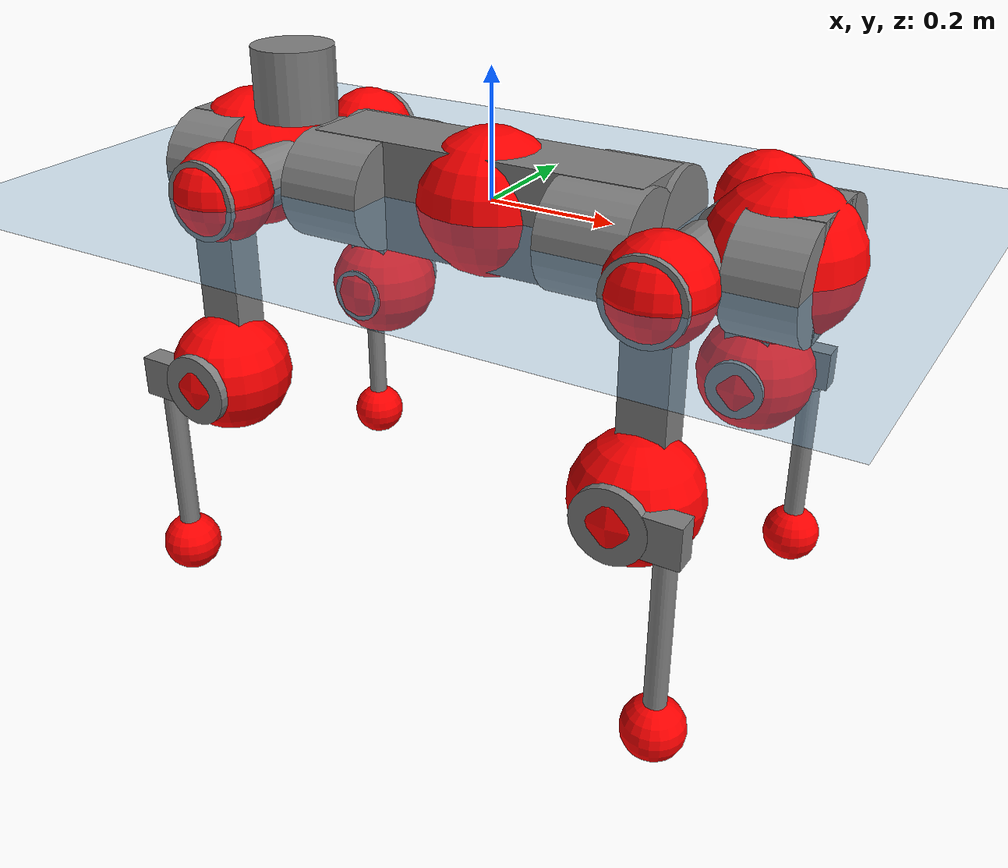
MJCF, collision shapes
<mujoco model="anymal_c">
  <compiler angle="radian" assetdir="assets" balanceinertia="true" inertiafromgeom="false"/>

  <option timestep="0.005" density="1.2" viscosity="2e-05"/>

  <size nkey="1"/>

  <visual>
    <quality shadowsize="8192"/>
    <map shadowclip="0.5"/>
  </visual>

  <default>
    <default class="/">
      <material specular="0" shininess="0.25"/>
      <geom contype="0" conaffinity="0" group="1" solref="-1000 -80"/>
      <site size="0.01 0.005 0.005" group="5"/>
      <general forcelimited="true" forcerange="-80 80" biastype="affine" gainprm="80" biasprm="0 -80 -2"/>
      <default class="anymal_c">
        <joint armature="0.01" damping="0.01" frictionloss="0.1"/>
        <default class="visual">
          <geom type="mesh" group="2"/>
          <default class="visual_zflip"/>
        </default>
        <default class="collision">
          <geom type="cylinder" group="3"/>
          <default class="foot">
            <geom size="0.03 0 0" type="sphere" condim="6" priority="1" friction="0.8 0.02 0.01" solimp="0.015 1 0.03"/>
          </default>
        </default>
      </default>
      <default class="reward_collision_sphere">
        <geom group="5" rgba="1 0 0 1"/>
      </default>
    </default>
  </default>

  <asset>
    <texture type="skybox" colorspace="auto" name="//unnamed_texture_0" builtin="gradient" rgb1="0.95 0.95 0.95" rgb2="0.95 0.95 0.95" width="100" height="600"/>
    <texture type="2d" colorspace="auto" name="texplane" builtin="checker" rgb1="0.345 0.575 0.748" rgb2="0.345 0.575 0.748" markrgb="1 1 1" width="512" height="512"/>
    <texture type="2d" colorspace="linear" name="base" file="base.png"/>
    <texture type="2d" colorspace="linear" name="top_shell" file="top_shell.png"/>
    <texture type="2d" colorspace="linear" name="bottom_shell" file="bottom_shell.png"/>
    <texture type="2d" colorspace="linear" name="remote" file="remote.png"/>
    <texture type="2d" colorspace="linear" name="hatch" file="hatch.png"/>
    <texture type="2d" colorspace="linear" name="handle" file="handle.png"/>
    <texture type="2d" colorspace="linear" name="face" file="face.png"/>
    <texture type="2d" colorspace="linear" name="battery" file="battery.png"/>
    <texture type="2d" colorspace="linear" name="lidar_cage" file="lidar_cage.png"/>
    <texture type="2d" colorspace="linear" name="depth_camera" file="depth_camera.png"/>
    <texture type="2d" colorspace="linear" name="wide_angle_camera" file="wide_angle_camera.png"/>
    <texture type="2d" colorspace="linear" name="lidar" file="lidar.png"/>
    <texture type="2d" colorspace="linear" name="drive" file="drive.png"/>
    <texture type="2d" colorspace="linear" name="hip_l" file="hip_l.png"/>
    <texture type="2d" colorspace="linear" name="shank_l" file="shank_l.png"/>
    <texture type="2d" colorspace="linear" name="foot" file="foot.png"/>
    <texture type="2d" colorspace="linear" name="thigh" file="thigh.png"/>
    <texture type="2d" colorspace="linear" name="shank_r" file="shank_r.png"/>
    <texture type="2d" colorspace="linear" name="hip_r" file="hip_r.png"/>
    <material name="MatPlane" class="/" texture="texplane" texuniform="true" texrepeat="2 2" specular="0.9" shininess="0.5"/>
    <material name="black_plastic" class="/" rgba="0.007 0.007 0.007 1"/>
    <material name="green" class="/" rgba="0.052 0.178 0.033 1"/>
    <material name="red" class="/" rgba="0.178 0.006 0.005 1"/>
    <material name="yellow" class="/" rgba="0.178 0.119 0.006 1"/>
    <material name="lwl" class="/" rgba="0.8 0.8 0.8 1"/>
    <material name="base" class="/" texture="base"/>
    <material name="top_shell" class="/" texture="top_shell"/>
    <material name="bottom_shell" class="/" texture="bottom_shell"/>
    <material name="hip_l" class="/" texture="hip_l"/>
    <material name="thigh" class="/" texture="thigh"/>
    <material name="shank_l" class="/" texture="shank_l"/>
    <material name="foot" class="/" texture="foot"/>
    <material name="hip_r" class="/" texture="hip_r"/>
    <material name="shank" class="/" texture="shank_r"/>
    <material name="hatch" class="/" texture="hatch"/>
    <material name="remote" class="/" texture="remote"/>
    <material name="handle" class="/" texture="handle"/>
    <material name="face" class="/" texture="face"/>
    <material name="depth_camera" class="/" texture="depth_camera"/>
    <material name="wide_angle_camera" class="/" texture="wide_angle_camera"/>
    <material name="battery" class="/" texture="battery"/>
    <material name="lidar_cage" class="/" texture="lidar_cage"/>
    <material name="lidar" class="/" texture="lidar"/>
    <material name="drive" class="/" texture="drive"/>
    <mesh name="base_0" class="/" file="base_0.obj"/>
    <mesh name="base_1" class="/" file="base_1.obj"/>
    <mesh name="base_2" class="/" file="base_2.obj"/>
    <mesh name="base_3" class="/" file="base_3.obj"/>
    <mesh name="base_4" class="/" file="base_4.obj"/>
    <mesh name="base_5" class="/" file="base_5.obj"/>
    <mesh name="top_shell" class="/" file="top_shell.obj"/>
    <mesh name="bottom_shell" class="/" file="bottom_shell.obj"/>
    <mesh name="remote" class="/" file="remote.obj"/>
    <mesh name="handle" class="/" file="handle.obj"/>
    <mesh name="face" class="/" file="face.obj"/>
    <mesh name="wide_angle_camera" class="/" file="wide_angle_camera.obj"/>
    <mesh name="depth_camera" class="/" file="depth_camera.obj"/>
    <mesh name="battery" class="/" file="battery.obj"/>
    <mesh name="lidar_cage" class="/" file="lidar_cage.obj"/>
    <mesh name="lidar" class="/" file="lidar.obj"/>
    <mesh name="drive" class="/" file="drive.obj"/>
    <mesh name="hip_l" class="/" file="hip_l.obj"/>
    <mesh name="thigh" class="/" file="thigh.obj"/>
    <mesh name="shank_l" class="/" file="shank_l.obj"/>
    <mesh name="foot" class="/" file="foot.obj"/>
    <mesh name="hip_r" class="/" file="hip_r.obj"/>
    <mesh name="hatch" class="/" file="hatch.obj"/>
    <mesh name="shank_r" class="/" file="shank_r.obj"/>
  </asset>

  <worldbody>
    <geom name="floor" class="/" size="100 100 0.125" type="plane" group="0" material="MatPlane"/>
    <light name="toplight_shadow" class="/" pos="0 0 5" dir="0.0990148 0.0990148 -0.990148" type="directional" ambient="0.04 0.04 0.04" diffuse="0.55 0.55 0.55" specular="0.12 0.12 0.12"/>
    <light name="toplight_fill" class="/" pos="0 0 5" dir="0.0990148 0.0990148 -0.990148" type="directional" castshadow="false" ambient="0.04 0.04 0.04" diffuse="0.3 0.3 0.3" specular="0.08 0.08 0.08"/>
    <body name="trunk" childclass="anymal_c" pos="1.49723e-05 -2.13646e-05 -0.00181529" quat="1 9.28836e-05 2.85118e-05 0.000109816">
      <inertial pos="-3.62487e-07 -0.00280296 0.0490641" quat="0.496848 0.500668 0.502612 0.499854" mass="16.1949" diaginertia="0.64171 0.258745 0.23791"/>
      <joint name="//unnamed_joint_0" type="free" armature="0" damping="0" frictionloss="0"/>
      <geom name="//unnamed_geom_1" class="visual" material="green" mesh="base_0"/>
      <geom name="//unnamed_geom_2" class="visual" material="yellow" mesh="base_1"/>
      <geom name="//unnamed_geom_3" class="visual" material="red" mesh="base_2"/>
      <geom name="//unnamed_geom_4" class="visual" material="black_plastic" mesh="base_3"/>
      <geom name="//unnamed_geom_5" class="visual" material="lwl" mesh="base_4"/>
      <geom name="//unnamed_geom_6" class="visual" material="base" mesh="base_5"/>
      <geom name="trunk_1" class="collision" size="0.274717 0.066311 0.085257" type="box"/>
      <geom name="trunk_2" class="collision" size="0.085257 0.0686793" pos="0.216907 0.0583903 0" quat="0.707107 0 0.707107 0"/>
      <geom name="trunk_3" class="collision" size="0.085257 0.0686793" pos="-0.216907 0.0583903 0" quat="0.707107 0 0.707107 0"/>
      <geom name="trunk_4" class="collision" size="0.085257 0.0686793" pos="0.216907 -0.0583903 0" quat="0.707107 0 0.707107 0"/>
      <geom name="trunk_5" class="collision" size="0.085257 0.0686793" pos="-0.216907 -0.0583903 0" quat="0.707107 0 0.707107 0"/>
      <geom name="//unnamed_geom_12" class="visual" material="top_shell" mesh="top_shell"/>
      <geom name="//unnamed_geom_13" class="visual" material="bottom_shell" mesh="bottom_shell"/>
      <geom name="//unnamed_geom_14" class="visual" material="remote" mesh="remote"/>
      <geom name="//unnamed_geom_15" class="visual" material="handle" mesh="handle"/>
      <geom name="//unnamed_geom_16" class="visual" pos="0.41337 0 0" quat="1 0 0 0" material="face" mesh="face"/>
      <geom name="trunk_6" class="collision" size="0.0521015 0.066311 0.085257" pos="0.46822 0 0" type="box"/>
      <geom name="//unnamed_geom_18" class="collision" size="0.085257 0.0521015" pos="0.46822 0.0583903 0" quat="0.707107 0 0.707107 0"/>
      <geom name="//unnamed_geom_19" class="collision" size="0.085257 0.0521015" pos="0.46822 -0.0583903 0" quat="0.707107 0 0.707107 0"/>
      <geom name="//unnamed_geom_20" class="visual" pos="0.460392 0 -0.0296064" quat="0.965926 0 0.258819 0" material="depth_camera" mesh="depth_camera"/>
      <geom name="//unnamed_geom_21" class="visual" pos="0.511601 0 0.0151269" material="wide_angle_camera" mesh="wide_angle_camera"/>
      <geom name="//unnamed_geom_22" class="visual_zflip" pos="-0.41337 0 0" quat="0 0 0 1" material="face" mesh="face"/>
      <geom name="trunk_7" class="collision" size="0.0521015 0.066311 0.085257" pos="-0.46822 0 0" quat="0 0 0 1" type="box"/>
      <geom name="//unnamed_geom_24" class="collision" size="0.085257 0.0521015" pos="-0.46822 -0.0583903 0" quat="0 -0.707107 0 0.707107"/>
      <geom name="//unnamed_geom_25" class="collision" size="0.085257 0.0521015" pos="-0.46822 0.0583903 0" quat="0 -0.707107 0 0.707107"/>
      <geom name="//unnamed_geom_26" class="visual" pos="-0.460392 0 -0.0296064" quat="0 -0.258819 0 0.965926" material="depth_camera" mesh="depth_camera"/>
      <geom name="//unnamed_geom_27" class="visual_zflip" pos="-0.511601 0 0.0151269" quat="0 0 0 1" material="wide_angle_camera" mesh="wide_angle_camera"/>
      <geom name="//unnamed_geom_28" class="visual" material="battery" mesh="battery"/>
      <geom name="//unnamed_geom_29" class="visual" pos="0 0.0616388 0.0292541" quat="0.683013 -0.183013 0.183013 0.683013" material="depth_camera" mesh="depth_camera"/>
      <geom name="//unnamed_geom_30" class="visual" pos="0 -0.0616388 0.0292541" quat="0.683013 0.183013 0.183013 -0.683013" material="depth_camera" mesh="depth_camera"/>
      <geom name="//unnamed_geom_31" class="visual" pos="-0.363007 0 0.0742704" quat="1 0 0 0" material="lidar_cage" mesh="lidar_cage"/>
      <geom name="trunk_8" class="collision" size="0.066311 0.056838" pos="-0.363007 0 0.134899"/>
      <geom name="//unnamed_geom_33" class="visual" pos="-0.363007 -6.40879e-05 0.14369" quat="0.707107 0 0 -0.707107" material="lidar" mesh="lidar"/>
      <geom name="//unnamed_geom_34" class="visual" pos="0.299082 0.0868139 -3.04179e-09" quat="0.258819 0.965926 0 0" material="drive" mesh="drive"/>
      <geom name="//unnamed_geom_35" class="visual" pos="0.299082 -0.0868139 3.04179e-09" quat="0.258819 -0.965926 0 0" material="drive" mesh="drive"/>
      <geom name="//unnamed_geom_36" class="visual" pos="-0.299082 0.0868139 3.04179e-09" quat="0 0 0.965926 -0.258819" material="drive" mesh="drive"/>
      <geom name="//unnamed_geom_37" class="visual" pos="-0.299082 -0.0868139 -3.04179e-09" quat="0 0 -0.965926 -0.258819" material="drive" mesh="drive"/>
      <geom name="//unnamed_geom_38" class="visual" pos="0.115684 0 0.0737651" quat="1 0 0 0" material="hatch" mesh="hatch"/>
      <geom name="//unnamed_geom_39" class="reward_collision_sphere" size="0.113676"/>
      <geom name="//unnamed_geom_40" class="reward_collision_sphere" size="0.113676" pos="0.448773 0 0"/>
      <geom name="//unnamed_geom_41" class="reward_collision_sphere" size="0.113676" pos="-0.448773 0 0"/>
      <site name="imu" pos="0.23478 0.0100944 0.0598336" size="0.009473"/>
      <camera name="track" pos="0 -1.66829 0" quat="0.707107 0.707107 0 0" mode="trackcom"/>
      <camera name="ego_camera" pos="0.448773 0 -0.0404192" quat="-0.5 -0.5 0.5 0.5"/>
      <body name="LF_HIP" pos="0.29879 0.0879994 0.00120788" quat="0.258713 0.965954 -0.000176378 0.000175046">
        <inertial pos="0.0591923 -0.0129344 -0.00849549" quat="-0.132476 0.708793 -0.131713 0.68023" mass="2.26863" diaginertia="0.00554314 0.00197067 0.0034102"/>
        <joint name="LF_HAA" pos="0 0 0" axis="0.999906 0.013538 -0.00237308" range="-0.725074 0.503806" armature="0.0107533" damping="0" frictionloss="0.0993275"/>
        <geom name="//unnamed_geom_42" class="visual" pos="0 -0.000178935 2.93899e-05" quat="0.258819 -0.965926 0 0" material="hip_l" mesh="hip_l"/>
        <geom name="//unnamed_geom_43" class="visual" pos="0.0597366 -0.0702985 -0.0418911" quat="0.183013 -0.683013 0.683013 0.183013" material="drive" mesh="drive"/>
        <geom name="//unnamed_geom_44" class="collision" size="0.047365 0.066311" pos="0.0597366 -0.00997623 -0.00697737" quat="-0.353553 -0.612372 0.612372 -0.353553"/>
        <body name="LF_THIGH" pos="0.0600126 -0.059467 -0.0433062" quat="0.182991 -0.682995 0.68305 0.182963">
          <inertial pos="0.0311391 -0.000183928 -0.245567" quat="0.993392 -0.00853509 -0.0771443 0.0845501" mass="2.66465" diaginertia="0.0289805 0.0121198 0.0044814"/>
          <joint name="LF_HFE" pos="0 0 0" axis="0.999879 -0.015212 0.00315008" range="-3.12398 3.11761" armature="0.00910256" damping="0.0136281" frictionloss="0.0824104"/>
          <geom name="//unnamed_geom_45" class="visual" pos="0.00324557 5.11426e-06 0" quat="0.707107 0 0 -0.707107" material="thigh" mesh="thigh"/>
          <geom name="//unnamed_geom_46" class="collision" size="0.0615745 0.037892" pos="0.0398909 0 0" quat="0.5 0.5 -0.5 -0.5"/>
          <geom name="//unnamed_geom_47" class="collision" size="0.0355238 0.028419 0.133867" pos="0.0299182 0 -0.142795" quat="0.707107 0 0 -0.707107" type="box"/>
          <geom name="//unnamed_geom_48" class="visual" pos="0.100026 0 -0.287987" quat="1 0 0 0" material="drive" mesh="drive"/>
          <geom name="//unnamed_geom_49" class="collision" size="0.047365 0.066311" pos="0.0302174 0 -0.287987" quat="0.707107 0 0.707107 0"/>
          <geom name="//unnamed_geom_50" class="reward_collision_sphere" size="0.075784" pos="0.0249318 0 0"/>
          <body name="LF_SHANK" pos="0.102839 -0.00298375 -0.290873" quat="0.999999 0.000581611 0.000892012 0.000648324">
            <inertial pos="0.00646387 -0.0510662 -0.0805339" quat="0.992917 -0.115146 -0.0048715 -0.0288613" mass="0.491557" diaginertia="0.00992101 0.003709 0.00118238"/>
            <joint name="LF_KFE" pos="0 0 0" axis="0.999999 -0.000728024 0.00113016" range="-3.17405 3.13105" armature="0.00977404" damping="0" frictionloss="0.101465"/>
            <geom name="//unnamed_geom_51" class="visual" pos="0.00105831 0.00564296 0" quat="0.707107 0 0 -0.707107" material="shank_l" mesh="shank_l"/>
            <geom name="LF_kfe_act" class="collision" size="0.056838 0.018946" pos="0.0199455 0 0" quat="0.5 0.5 -0.5 -0.5"/>
            <geom name="//unnamed_geom_53" class="collision" size="0.0544688 0.0319714 0.0179987" pos="0.0199455 -0.0479626 0" quat="0.5 0.5 -0.5 -0.5" type="box"/>
            <geom name="//unnamed_geom_54" class="visual" pos="0.0130142 -0.0715447 -0.341512" quat="0.382683 0 0 -0.92388" material="foot" mesh="foot"/>
            <geom name="LF_calf" class="collision" size="0.0165778 0.133808" pos="0.0130144 -0.0733632 -0.170756" quat="0.707107 0 0 -0.707107"/>
            <geom name="LF_foot" class="foot" size="0.030709" pos="0.0130144 -0.0733632 -0.318776" quat="0.707107 0 0 -0.707107"/>
            <geom name="//unnamed_geom_57" class="reward_collision_sphere" size="0.09473" pos="-0.0498636 0 0"/>
            <geom name="//unnamed_geom_58" class="reward_collision_sphere" size="0.047365" pos="0.0130144 -0.0733632 -0.318776"/>
            <site name="LF_foot" class="foot" pos="0.0130144 -0.0733632 -0.318776" quat="0.707107 0 0 -0.707107" size="0.009473"/>
          </body>
        </body>
      </body>
      <body name="RF_HIP" pos="0.298405 -0.0877464 0.000201337" quat="0.258709 -0.965955 0.000131169 -5.69864e-06">
        <inertial pos="0.0592126 0.0133334 -0.00837735" quat="0.134884 0.678633 0.128106 0.71053" mass="2.43506" diaginertia="0.00587153 0.00204557 0.00353398"/>
        <joint name="RF_HAA" pos="0 0 0" axis="1 -0.000398799 0.000177317" range="-0.546078 0.707022" armature="0.00827062" damping="0.00954512" frictionloss="0.0822509"/>
        <geom name="//unnamed_geom_59" class="visual" pos="0 0.000178933 2.93898e-05" quat="0.258819 0.965926 0 0" material="hip_r" mesh="hip_r"/>
        <geom name="//unnamed_geom_60" class="visual" pos="0.0597366 0.0702985 -0.0418911" quat="0.183013 0.683013 0.683013 -0.183013" material="drive" mesh="drive"/>
        <geom name="//unnamed_geom_61" class="collision" size="0.047365 0.066311" pos="0.0597366 0.00997623 -0.00697737" quat="-0.353553 0.612372 0.612372 0.353553"/>
        <body name="RF_THIGH" pos="0.0601766 0.0633957 -0.0433394" quat="0.183 0.683242 0.682817 -0.182899">
          <inertial pos="0.030576 -0.000883493 -0.247833" quat="0.992756 0.00467871 -0.0745205 0.0941322" mass="2.45296" diaginertia="0.0290013 0.0119517 0.00430125"/>
          <joint name="RF_HFE" pos="0 0 0" axis="0.999968 -0.00302451 -0.00747297" stiffness="0.00641339" range="-3.0891 3.17359" armature="0.00960904" damping="0" frictionloss="0.106715"/>
          <geom name="//unnamed_geom_62" class="visual" pos="0.00324557 5.11426e-06 0" quat="0.707107 0 0 -0.707107" material="thigh" mesh="thigh"/>
          <geom name="//unnamed_geom_63" class="collision" size="0.0615745 0.037892" pos="0.0398909 0 0" quat="0.5 0.5 0.5 0.5"/>
          <geom name="//unnamed_geom_64" class="collision" size="0.0355238 0.028419 0.133867" pos="0.0299182 0 -0.142795" quat="0.707107 0 0 0.707107" type="box"/>
          <geom name="//unnamed_geom_65" class="visual" pos="0.100026 0 -0.287987" quat="1 0 0 0" material="drive" mesh="drive"/>
          <geom name="//unnamed_geom_66" class="collision" size="0.047365 0.066311" pos="0.0302174 0 -0.287987" quat="0.707107 0 0.707107 0"/>
          <geom name="//unnamed_geom_67" class="reward_collision_sphere" size="0.075784" pos="0.0249318 0 0"/>
          <body name="RF_SHANK" pos="0.102031 -0.00225541 -0.288159" quat="1 -8.29297e-05 4.5204e-05 7.1369e-05">
            <inertial pos="0.00587477 0.0506705 -0.078559" quat="0.993181 0.112981 -0.0044265 0.0284257" mass="0.503612" diaginertia="0.00966241 0.00361178 0.00118275"/>
            <joint name="RF_KFE" pos="0 0 0" axis="1 -0.00059636 0.0003984" stiffness="0.000607252" range="-3.15153 3.1633" armature="0.00986158" damping="0.00596434" frictionloss="0.0819315"/>
            <geom name="//unnamed_geom_68" class="visual" pos="0.0010583 -0.00564295 0" quat="0.707107 0 0 0.707107" material="shank" mesh="shank_r"/>
            <geom name="RF_kfe_act" class="collision" size="0.056838 0.018946" pos="0.0199455 0 0" quat="0.5 0.5 0.5 0.5"/>
            <geom name="//unnamed_geom_70" class="collision" size="0.0544688 0.0319714 0.0179987" pos="0.0199455 0.0479626 0" quat="0.5 0.5 0.5 0.5" type="box"/>
            <geom name="//unnamed_geom_71" class="visual" pos="0.0130147 0.0715447 -0.341512" quat="0.382683 0 0 0.92388" material="foot" mesh="foot"/>
            <geom name="RF_calf" class="collision" size="0.0165778 0.133808" pos="0.0130144 0.0733632 -0.170756" quat="0.707107 0 0 0.707107"/>
            <geom name="RF_foot" class="foot" size="0.0266481" pos="0.0130144 0.0733632 -0.318776" quat="0.707107 0 0 0.707107"/>
            <geom name="//unnamed_geom_74" class="reward_collision_sphere" size="0.09473" pos="-0.0498636 0 0"/>
            <geom name="//unnamed_geom_75" class="reward_collision_sphere" size="0.047365" pos="0.0130144 0.0733632 -0.318776"/>
            <site name="RF_foot" class="foot" pos="0.0130144 0.0733632 -0.318776" quat="0.707107 0 0 0.707107" size="0.009473"/>
          </body>
        </body>
      </body>
      <body name="LH_HIP" pos="-0.301274 0.08732 0.000805356" quat="-4.33381e-05 0.000376497 0.965902 -0.258906">
        <inertial pos="0.0568115 0.0151584 -0.00794948" quat="0.134894 0.676337 0.133515 0.71172" mass="2.34912" diaginertia="0.00564004 0.00198912 0.00324735"/>
        <joint name="LH_HAA" pos="0 0 0" axis="0.999999 -8.25217e-05 -0.00130881" range="-0.503992 0.672626" armature="0.00808006" damping="0.00737607" frictionloss="0.0921761"/>
        <geom name="//unnamed_geom_76" class="visual" pos="0 0.000178933 2.93898e-05" quat="-0.258819 -0.965926 0 0" material="hip_r" mesh="hip_r"/>
        <geom name="//unnamed_geom_77" class="visual" pos="0.0597366 0.0702985 -0.0418911" quat="0.183013 0.683013 0.683013 -0.183013" material="drive" mesh="drive"/>
        <geom name="//unnamed_geom_78" class="collision" size="0.047365 0.066311" pos="0.0597366 0.00997623 -0.00697737" quat="-0.353553 0.612372 0.612372 0.353553"/>
        <body name="LH_THIGH" pos="0.0572955 0.0579334 -0.0418884" quat="0.182872 0.683087 0.682956 -0.183087">
          <inertial pos="0.0307906 0.00223329 -0.247259" quat="0.99275 -0.00541511 -0.0812476 0.0884126" mass="2.61716" diaginertia="0.0297952 0.0118909 0.00436279"/>
          <joint name="LH_HFE" pos="0 0 0" axis="0.999933 0.0115539 -0.000905136" stiffness="0.000657709" range="-3.14638 3.14456" armature="0.00919641" damping="0.00772558" frictionloss="0.0920471"/>
          <geom name="//unnamed_geom_79" class="visual" pos="0.00324557 5.11426e-06 0" quat="0.707107 0 0 -0.707107" material="thigh" mesh="thigh"/>
          <geom name="//unnamed_geom_80" class="collision" size="0.0615745 0.037892" pos="0.0398909 0 0" quat="0.5 0.5 -0.5 -0.5"/>
          <geom name="//unnamed_geom_81" class="collision" size="0.0355238 0.028419 0.133867" pos="0.0299182 0 -0.142795" quat="0.707107 0 0 -0.707107" type="box"/>
          <geom name="//unnamed_geom_82" class="visual" pos="0.100026 0 -0.287987" quat="1 0 0 0" material="drive" mesh="drive"/>
          <geom name="//unnamed_geom_83" class="collision" size="0.047365 0.066311" pos="0.0302174 0 -0.287987" quat="0.707107 0 0.707107 0"/>
          <geom name="//unnamed_geom_84" class="reward_collision_sphere" size="0.075784" pos="0.0249318 0 0"/>
          <body name="LH_SHANK" pos="0.0984058 -0.000230531 -0.288207" quat="1 -5.91156e-05 -3.56912e-05 -5.92059e-05">
            <inertial pos="0.00540203 0.0511665 -0.0815657" quat="0.993461 0.11344 -0.000636305 0.0129303" mass="0.497561" diaginertia="0.01003 0.00369638 0.00113555"/>
            <joint name="LH_KFE" pos="0 0 0" axis="0.999843 0.0169943 -0.00493409" stiffness="0.000406528" range="-3.13947 3.13861" armature="0.00851089" damping="0.00641012" frictionloss="0.102155"/>
            <geom name="//unnamed_geom_85" class="visual" pos="0.0010583 -0.00564295 0" quat="-0.707107 0 0 -0.707107" material="shank" mesh="shank_r"/>
            <geom name="LH_kfe_act" class="collision" size="0.056838 0.018946" pos="0.0199455 0 0" quat="0.5 0.5 -0.5 -0.5"/>
            <geom name="//unnamed_geom_87" class="collision" size="0.0544688 0.0319714 0.0179987" pos="0.0199455 0.0479626 0" quat="0.5 0.5 -0.5 -0.5" type="box"/>
            <geom name="//unnamed_geom_88" class="visual" pos="0.0130147 0.0715447 -0.341512" quat="-0.382683 0 0 -0.92388" material="foot" mesh="foot"/>
            <geom name="LH_calf" class="collision" size="0.0165778 0.133808" pos="0.0130144 0.0733632 -0.170756" quat="0.707107 0 0 -0.707107"/>
            <geom name="LH_foot" class="foot" size="0.0341323" pos="0.0130144 0.0733632 -0.318776" quat="0.707107 0 0 -0.707107"/>
            <geom name="//unnamed_geom_91" class="reward_collision_sphere" size="0.09473" pos="-0.0498636 0 0"/>
            <geom name="//unnamed_geom_92" class="reward_collision_sphere" size="0.047365" pos="0.0130144 0.0733632 -0.318776"/>
            <site name="LH_foot" class="foot" pos="0.0130144 0.0733632 -0.318776" quat="0.707107 0 0 -0.707107" size="0.009473"/>
          </body>
        </body>
      </body>
      <body name="RH_HIP" pos="-0.298644 -0.0899986 0.000393538" quat="0.000586362 -0.000904267 -0.965836 -0.259151">
        <inertial pos="0.0538116 -0.0130157 -0.00608926" quat="-0.131879 0.708118 -0.137785 0.679847" mass="2.34483" diaginertia="0.00571926 0.00197695 0.00332734"/>
        <joint name="RH_HAA" pos="0 0 0" axis="0.999999 0.00061095 -0.000809327" range="-0.773845 0.546953" armature="0.00948629" damping="0.00219837" frictionloss="0.0932265"/>
        <geom name="//unnamed_geom_93" class="visual" pos="0 -0.000178935 2.93899e-05" quat="-0.258819 0.965926 0 0" material="hip_l" mesh="hip_l"/>
        <geom name="//unnamed_geom_94" class="visual" pos="0.0597366 -0.0702985 -0.0418911" quat="-0.183013 0.683013 -0.683013 -0.183013" material="drive" mesh="drive"/>
        <geom name="//unnamed_geom_95" class="collision" size="0.047365 0.066311" pos="0.0597366 -0.00997623 -0.00697737" quat="0.353553 0.612372 -0.612372 0.353553"/>
        <body name="RH_THIGH" pos="0.0597912 -0.0610348 -0.0407137" quat="-0.182846 0.68316 -0.682956 -0.182839">
          <inertial pos="0.0330271 0.00104848 -0.248952" quat="0.993233 -0.00533296 -0.0801968 0.0838314" mass="2.44037" diaginertia="0.0279587 0.0117612 0.00420852"/>
          <joint name="RH_HFE" pos="0 0 0" axis="0.999956 -0.000891861 -0.00932597" range="-3.13351 3.13445" armature="0.00955376" damping="0.0104269" frictionloss="0.093224"/>
          <geom name="//unnamed_geom_96" class="visual" pos="0.00324557 5.11426e-06 0" quat="0.707107 0 0 -0.707107" material="thigh" mesh="thigh"/>
          <geom name="//unnamed_geom_97" class="collision" size="0.0615745 0.037892" pos="0.0398909 0 0" quat="0.5 0.5 0.5 0.5"/>
          <geom name="//unnamed_geom_98" class="collision" size="0.0355238 0.028419 0.133867" pos="0.0299182 0 -0.142795" quat="0.707107 0 0 0.707107" type="box"/>
          <geom name="//unnamed_geom_99" class="visual" pos="0.100026 0 -0.287987" quat="1 0 0 0" material="drive" mesh="drive"/>
          <geom name="//unnamed_geom_100" class="collision" size="0.047365 0.066311" pos="0.0302174 0 -0.287987" quat="0.707107 0 0.707107 0"/>
          <geom name="//unnamed_geom_101" class="reward_collision_sphere" size="0.075784" pos="0.0249318 0 0"/>
          <body name="RH_SHANK" pos="0.097404 0.00161302 -0.288569" quat="1 3.9576e-05 8.25353e-05 -3.11679e-05">
            <inertial pos="0.00592221 -0.0508796 -0.0811193" quat="0.994294 -0.104186 0.00191723 -0.0228167" mass="0.498976" diaginertia="0.00992939 0.00385289 0.00119002"/>
            <joint name="RH_KFE" pos="0 0 0" axis="0.999991 0.000719863 -0.00422059" stiffness="0.00485452" range="-3.11745 3.15134" armature="0.00817529" damping="0.00318954" frictionloss="0.0952688"/>
            <geom name="//unnamed_geom_102" class="visual" pos="0.00105831 0.00564296 0" quat="0.707107 0 0 -0.707107" material="shank_l" mesh="shank_l"/>
            <geom name="RH_kfe_act" class="collision" size="0.056838 0.018946" pos="0.0199455 0 0" quat="0.5 0.5 0.5 0.5"/>
            <geom name="//unnamed_geom_104" class="collision" size="0.0544688 0.0319714 0.0179987" pos="0.0199455 -0.0479626 0" quat="0.5 0.5 0.5 0.5" type="box"/>
            <geom name="//unnamed_geom_105" class="visual" pos="0.0130142 -0.0715447 -0.341512" quat="0.382683 0 0 -0.92388" material="foot" mesh="foot"/>
            <geom name="RH_calf" class="collision" size="0.0165778 0.133808" pos="0.0130144 -0.0733632 -0.170756" quat="0.707107 0 0 0.707107"/>
            <geom name="RH_foot" class="foot" size="0.0238059" pos="0.0130144 -0.0733632 -0.318776" quat="0.707107 0 0 0.707107"/>
            <geom name="//unnamed_geom_108" class="reward_collision_sphere" size="0.09473" pos="-0.0498636 0 0"/>
            <geom name="//unnamed_geom_109" class="reward_collision_sphere" size="0.047365" pos="0.0130144 -0.0733632 -0.318776"/>
            <site name="RH_foot" class="foot" pos="0.0130144 -0.0733632 -0.318776" quat="0.707107 0 0 0.707107" size="0.009473"/>
          </body>
        </body>
      </body>
    </body>
  </worldbody>

  <contact>
    <pair class="/" geom1="floor" geom2="LF_foot" name="//unnamed_contact_0"/>
    <pair class="/" geom1="floor" geom2="RF_foot" name="//unnamed_contact_1"/>
    <pair class="/" geom1="floor" geom2="LH_foot" name="//unnamed_contact_2"/>
    <pair class="/" geom1="floor" geom2="RH_foot" name="//unnamed_contact_3"/>
  </contact>

  <actuator>
    <general name="LF_HAA" class="/" joint="LF_HAA" forcerange="-78.5666 78.5666" gainprm="80.7034" biasprm="0 -80.7034 -1.83241"/>
    <general name="LF_HFE" class="/" joint="LF_HFE" forcerange="-73.5762 73.5762" gainprm="80.7034" biasprm="0 -80.7034 -1.83241"/>
    <general name="LF_KFE" class="/" joint="LF_KFE" forcerange="-78.1025 78.1025" gainprm="80.7034" biasprm="0 -80.7034 -1.83241"/>
    <general name="RF_HAA" class="/" joint="RF_HAA" forcerange="-72.9298 72.9298" gainprm="80.7034" biasprm="0 -80.7034 -1.83241"/>
    <general name="RF_HFE" class="/" joint="RF_HFE" forcerange="-79.0089 79.0089" gainprm="80.7034" biasprm="0 -80.7034 -1.83241"/>
    <general name="RF_KFE" class="/" joint="RF_KFE" forcerange="-68.9576 68.9576" gainprm="80.7034" biasprm="0 -80.7034 -1.83241"/>
    <general name="LH_HAA" class="/" joint="LH_HAA" forcerange="-76.1745 76.1745" gainprm="80.7034" biasprm="0 -80.7034 -1.83241"/>
    <general name="LH_HFE" class="/" joint="LH_HFE" forcerange="-69.0776 69.0776" gainprm="80.7034" biasprm="0 -80.7034 -1.83241"/>
    <general name="LH_KFE" class="/" joint="LH_KFE" forcerange="-78.0229 78.0229" gainprm="80.7034" biasprm="0 -80.7034 -1.83241"/>
    <general name="RH_HAA" class="/" joint="RH_HAA" forcerange="-78.6264 78.6264" gainprm="80.7034" biasprm="0 -80.7034 -1.83241"/>
    <general name="RH_HFE" class="/" joint="RH_HFE" forcerange="-68.7545 68.7545" gainprm="80.7034" biasprm="0 -80.7034 -1.83241"/>
    <general name="RH_KFE" class="/" joint="RH_KFE" forcerange="-83.0724 83.0724" gainprm="80.7034" biasprm="0 -80.7034 -1.83241"/>
  </actuator>

  <sensor>
    <gyro site="imu" name="imu_angular_velocity"/>
    <velocimeter site="imu" name="imu_linear_velocity"/>
    <framelinvel objtype="site" objname="LF_foot" name="LF_foot_global_linear_velocity"/>
    <framelinvel objtype="site" objname="RF_foot" name="RF_foot_global_linear_velocity"/>
    <framelinvel objtype="site" objname="LH_foot" name="LH_foot_global_linear_velocity"/>
    <framelinvel objtype="site" objname="RH_foot" name="RH_foot_global_linear_velocity"/>
  </sensor>

  <keyframe>
    <key name="home" qpos="0 0 0.55 1 0 0 0 0 0.4 -0.8 0 -0.4 0.8 0 -0.4 0.8 0 0.4 -0.8"/>
  </keyframe>
</mujoco>
